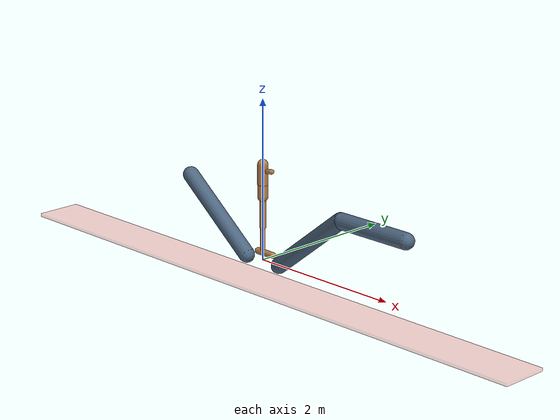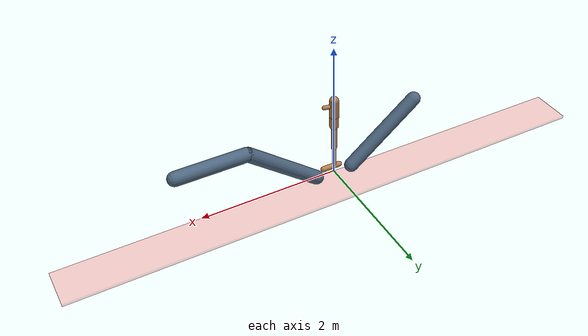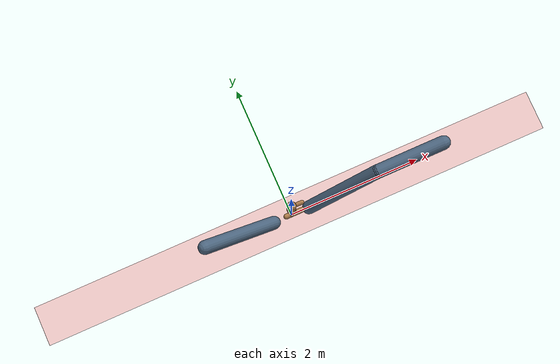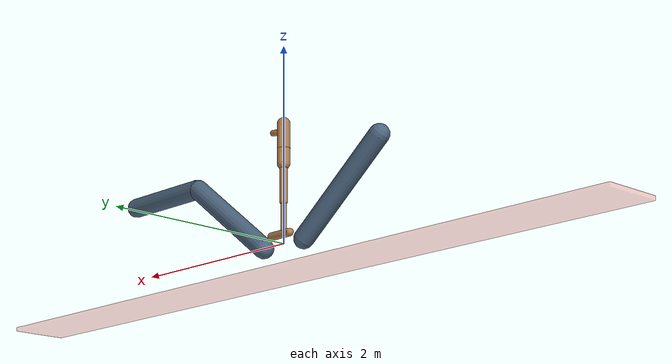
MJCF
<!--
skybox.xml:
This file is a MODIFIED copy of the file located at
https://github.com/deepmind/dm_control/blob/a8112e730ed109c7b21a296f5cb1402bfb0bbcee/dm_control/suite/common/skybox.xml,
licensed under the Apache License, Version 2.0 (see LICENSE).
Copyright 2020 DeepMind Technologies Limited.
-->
<mujoco model="planar hopper">
  <include file="./common/skybox.xml"/>
  <include file="./common/visual.xml"/>
  <include file="./common/materials.xml"/>

  <statistic extent="2" center="0 0 .5"/>

  <default>
    <default class="hopper">
      <joint type="hinge" axis="0 1 0" limited="true" damping=".05" armature=".2"/>
      <geom type="capsule" material="self" contype="0" />
      <site type="sphere" size="0.05" group="3"/>
    </default>
    <default class="free">
      <joint limited="false" damping="0" armature="0" stiffness="0"/>
    </default>
    <motor ctrlrange="-1 1" ctrllimited="true"/>
  </default>

  <option timestep="0.005" iterations="4" ls_iterations="10">
    <flag eulerdamp="disable"/>
  </option>

  <custom>
    <numeric data="6" name="max_contact_points"/>
    <!--  This is the number of geom pairs considered during collision checking... -->
    <numeric data="5" name="max_geom_pairs"/>
  </custom>

  <worldbody>
    <camera name="cam0" pos="0 -2.8 0.8" euler="90 0 0" mode="trackcom"/>
    <camera name="back" pos="-2 -.2 1.2" xyaxes="0.2 -1 0 .5 0 2" mode="trackcom"/>

    <camera name="static" pos=".5 -2.8 0.5" euler="90 0 0" mode="trackcom"/>

    <body name="floor_l" pos="-0.28 0 0">
      <geom name="floor_l" type="capsule" fromto="0 0 0 -1 0 .8" size="0.1" material="gridlight" priority="5" contype="0"/>
    </body>

    <body name="floor_r" pos="0.28 0 0">
      <geom name="floor_r" type="capsule" fromto="0 0 0 1 0 .8" size="0.1" material="gridlight" priority="5" contype="0"/>
      <geom name="floor_r2" type="capsule" fromto="1 0 .8 2 0 .8" size="0.1" material="gridlight" priority="5" contype="0"/>
    </body>

    <!-- Add a danger region below -->
    <geom type="box" pos="0 0 -0.3" size="4.0 .3 0.02" rgba=".93 .33 .31 .3"
        contype="0" conaffinity="0"
        mass="0"
        group="1"/>

    <body name="torso" pos="0 0 1" childclass="hopper">
      <light name="top" pos="0 0 2" mode="trackcom"/>
      <joint name="rootx" type="slide" axis="1 0 0" class="free"/>
      <joint name="rootz" type="slide" axis="0 0 1" class="free"/>
      <joint name="rooty" type="hinge" axis="0 1 0" class="free"/>
      <geom name="torso" fromto="0 0 -.05 0 0 .2" size="0.0653"/>
      <geom name="nose" fromto=".08 0 .13 .15 0 .14" size="0.03"/>

      <body name="pelvis" pos="0 0 -.05">
        <joint name="waist" range="-30 30"/>
        <geom name="pelvis" fromto="0 0 0 0 0 -.15" size="0.065" />

        <body name="thigh" pos="0 0 -.2">
          <joint name="hip" range="-170 10"/>
          <geom name="thigh" fromto="0 0 0 0 0 -.33" size="0.04"/>

          <body name="calf" pos="0 0 -.33">
            <joint name="knee" range="5 150"/>
            <geom name="calf" fromto="0 0 0 0 0 -.32" size="0.03"/>

            <body name="foot" pos="0 0 -.32">
              <joint name="ankle" range="-45 45"/>
              <geom name="foot" fromto="-.08 0 0 .17 0 0" size="0.04"/>

              <site name="touch_toe" pos=".17 0 0"/>
              <site name="touch_heel" pos="-.08 0 0"/>
            </body>
          </body>
        </body>
      </body>
    </body>
  </worldbody>

  <sensor>
    <subtreelinvel name="torso_subtreelinvel" body="torso"/>
    <touch name="touch_toe" site="touch_toe"/>
    <touch name="touch_heel" site="touch_heel"/>
  </sensor>

  <actuator>
<!--    Original -->
    <motor name="waist" joint="waist" gear="30"/>
    <motor name="hip" joint="hip" gear="50"/>
    <motor name="knee" joint="knee" gear="50"/>
    <motor name="ankle" joint="ankle" gear="100"/>
  </actuator>

  <contact>
    <pair geom1="floor_l" geom2="foot" friction=".6 .6 0.005 0.0001 0.0001"/>
    <pair geom1="floor_r" geom2="foot" friction=".6 .6 0.005 0.0001 0.0001"/>
    <pair geom1="floor_r2" geom2="foot" friction=".6 .6 0.005 0.0001 0.0001"/>

    <pair geom1="torso" geom2="thigh"/>
    <pair geom1="torso" geom2="nose"/>
    <pair geom1="nose" geom2="calf"/>
  </contact>
</mujoco>

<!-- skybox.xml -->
<mujoco>
  <asset>
      <texture name="skybox" type="skybox" builtin="gradient" rgb1=".4 .6 .8" rgb2="0 0 0"
               width="800" height="800" mark="random" markrgb="1 1 1"/>
  </asset>
</mujoco>

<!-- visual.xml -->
<mujoco>
  <visual>
    <headlight ambient=".4 .4 .4" diffuse=".8 .8 .8" specular="0.1 0.1 0.1"/>
    <map znear=".01"/>
    <quality shadowsize="2048"/>
  </visual>
</mujoco>

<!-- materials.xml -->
<!--
Common textures, colors and materials to be used throughout this suite. Some
materials such as xxx_highlight are activated on occurence of certain events,
for example receiving a positive reward.
-->
<mujoco>
  <asset>
    <texture name="grid" type="2d" builtin="checker" rgb1=".1 .2 .3" rgb2=".2 .3 .4" width="300" height="300" mark="edge" markrgb=".2 .3 .4"/>
    <material name="grid" texture="grid" texrepeat="1 1" texuniform="true" reflectance=".2"/>
    <material name="gridbig" texture="grid" texrepeat="0.25 0.25" texuniform="true" reflectance=".2"/>

    <material name="self" rgba=".7 .5 .3 1"/>
    <material name="self_default" rgba=".7 .5 .3 1"/>
    <material name="self_highlight" rgba="0 .5 .3 1"/>

    <material name="effector" rgba=".7 .4 .2 1"/>
    <material name="effector_default" rgba=".7 .4 .2 1"/>
    <material name="effector_highlight" rgba="0 .5 .3 1"/>

    <material name="decoration" rgba=".3 .5 .7 1"/>

    <material name="eye" rgba="0 .2 1 1"/>

    <material name="target" rgba=".6 .3 .3 1"/>
    <material name="target_default" rgba=".6 .3 .3 1"/>
    <material name="target_highlight" rgba=".6 .3 .3 .4"/>
    <material name="site" rgba=".5 .5 .5 .3"/>

    <material name="wind" rgba=".98 .76 .37 .3"/>

    <material name="goal" rgba="0.55 0.72 0.26 .7"/>

    <material name="danger" rgba=".93 .33 .31 .9"/>
    <material name="danger_fill" rgba=".93 .33 .31 1."/>

    <texture name="gridlight" type="2d" builtin="checker" rgb1=".2 .3 .4" rgb2=".4 .5 .6" width="300" height="300" mark="edge" markrgb=".2 .3 .4"/>
    <material name="gridlight" texture="gridlight" texrepeat="1 1" texuniform="true" reflectance=".2"/>
  </asset>
</mujoco>
